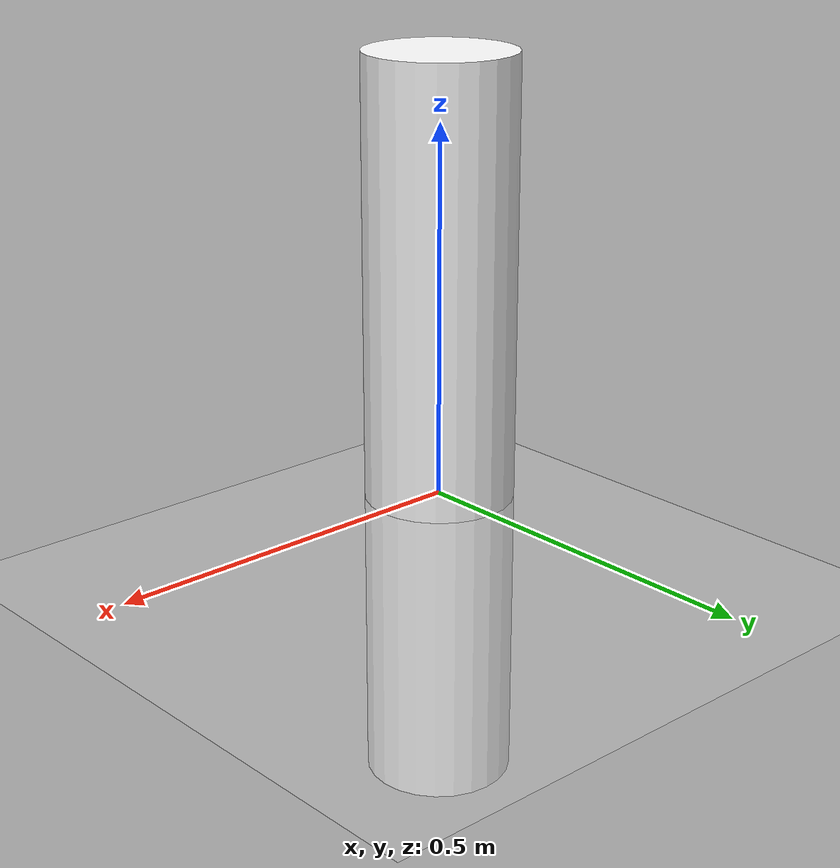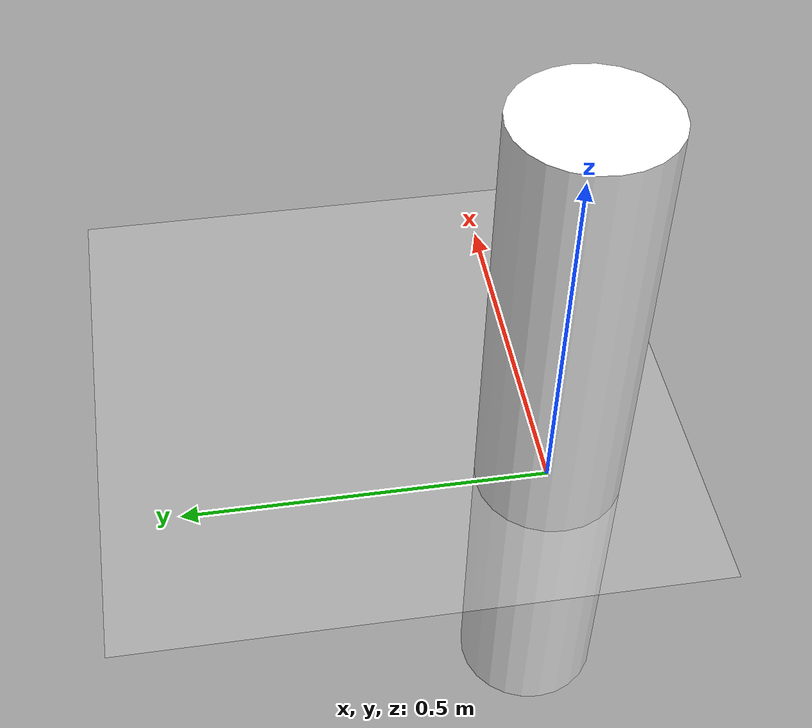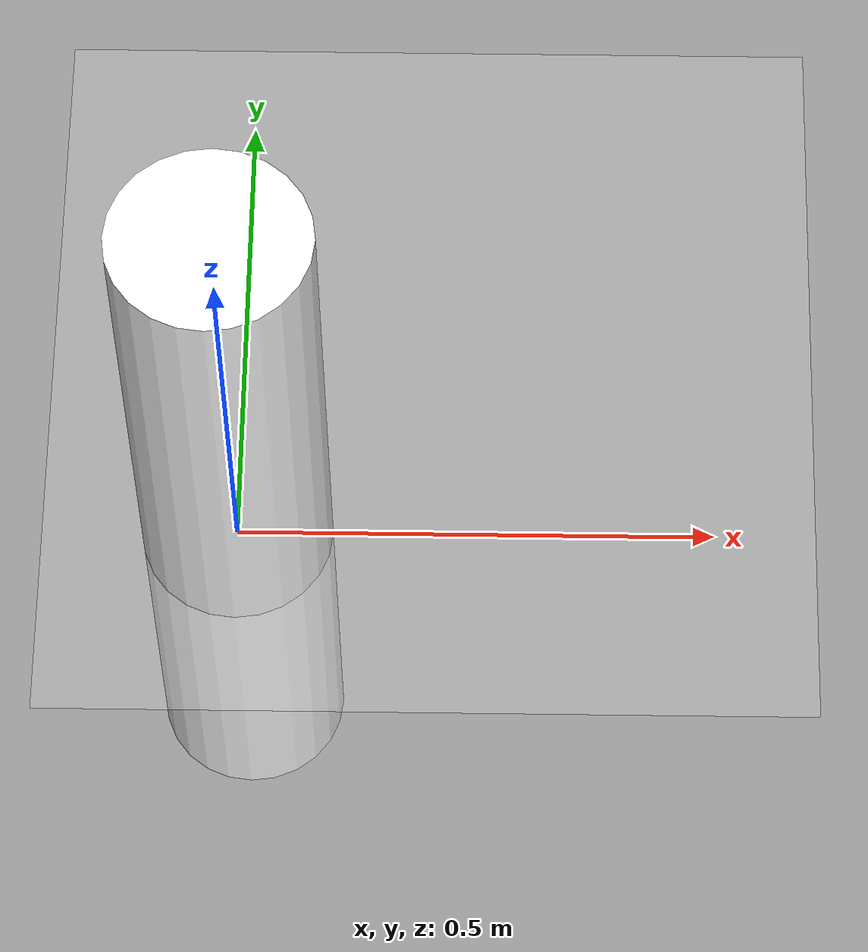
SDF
<?xml version="1.0" ?>

<sdf version="1.5">

  <world name="ur5_PiH">

    <gravity>0 0 -9.81</gravity>

    <physics default="1" name="default_physics" type="ode">
  <max_contacts>20</max_contacts>
  <real_time_update_rate>1000</real_time_update_rate>
  <real_time_factor>1</real_time_factor>
  <max_step_size>0.001</max_step_size>
  <ode>
    <solver>
      <use_dynamic_moi_scaling>0</use_dynamic_moi_scaling>
      <sor>1.3</sor>
      <friction_model>pyramid_model</friction_model>
      <type>quick</type>
      <iters>200</iters>
      <min_step_size>0.0001</min_step_size>
      <precon_iters>0</precon_iters>
    </solver>
    <constraints>
      <cfm>0.0001</cfm>
      <contact_max_correcting_vel>0.3</contact_max_correcting_vel>
      <contact_surface_layer>0.001</contact_surface_layer>
      <erp>0.20005</erp>
    </constraints>
  </ode>
</physics>

    <include>
      <uri>model://sun</uri>
    </include>

    <include>
      <uri>model://ground_plane</uri>
      <pose>0 0 0 0 0 0</pose>
      <RGB> 0 1 1</RGB>
    </include>

    <model name="ur5_base">
      <include>
        <uri>model://ur5_pilar</uri>
        <static>true</static>
        <pose>0 0 0.09 0 0 0 0</pose>
    </include>

    </model>

  </world>

</sdf>

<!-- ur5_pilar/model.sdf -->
<sdf version='1.6'>
 <model name='robot_pilar'>
      <static>1</static>
      <pose frame=''>0.0 -1.0 0.5 0 -0 0</pose>
      <link name='link'>
        <inertial>
          <mass>1</mass>
          <inertia>
            <ixx>0.145833</ixx>
            <ixy>0</ixy>
            <ixz>0</ixz>
            <iyy>0.145833</iyy>
            <iyz>0</iyz>
            <izz>0.125</izz>
          </inertia>
        </inertial>
        <collision name='collision'>
          <geometry>
            <cylinder>
              <radius>0.1</radius>
              <length>1</length>
            </cylinder>
          </geometry>
          <max_contacts>10</max_contacts>
          <surface>
            <contact>
              <ode/>
            </contact>
            <bounce/>
            <friction>
              <torsional>
                <ode/>
              </torsional>
              <ode/>
            </friction>
          </surface>
        </collision>
        <visual name='visual'>
          <geometry>
            <cylinder>
              <radius>0.1</radius>
              <length>1</length>
            </cylinder>
          </geometry>
          <material>
            <script>
              <uri>file://media/materials/scripts/gazebo.material</uri>
              <name>Gazebo/Metal</name>
            </script>
            <ambient>1 1 1 1</ambient>
          </material>
        </visual>
        <self_collide>0</self_collide>
        <kinematic>0</kinematic>
      </link>
    </model>
</sdf>
